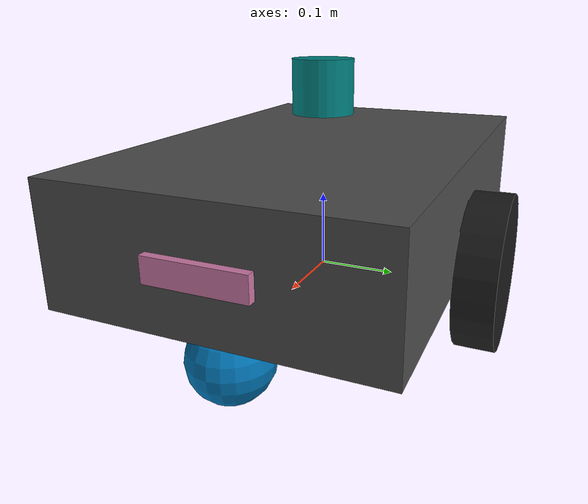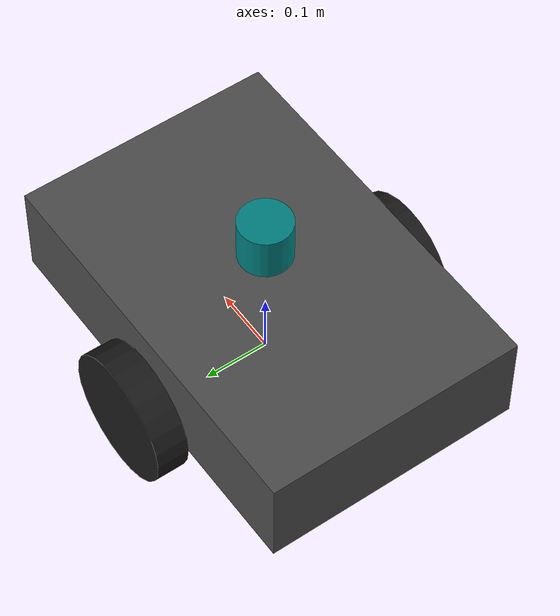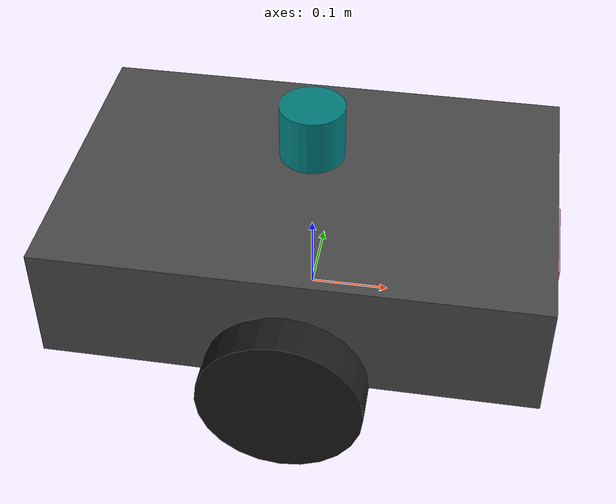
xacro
<?xml version="1.0"?>
<robot xmlns:xacro="http://www.ros.org/wiki/xacro" name="swarm_robot">

  <xacro:arg name="robot_namespace" default="robot_0"/>
  <xacro:property name="ns"  value="$(arg robot_namespace)"/>
  <xacro:property name="pi"  value="3.14159265358979"/>

  <xacro:property name="base_len" value="0.60"/>
  <xacro:property name="base_wid" value="0.40"/>
  <xacro:property name="base_ht"  value="0.15"/>
  <xacro:property name="wheel_r"  value="0.10"/>
  <xacro:property name="wheel_w"  value="0.05"/>
  <xacro:property name="wheel_y"  value="0.225"/>

  <link name="base_footprint"/>
  <joint name="base_joint" type="fixed">
    <parent link="base_footprint"/>
    <child  link="base_link"/>
    <origin xyz="0 0 ${wheel_r}" rpy="0 0 0"/>
  </joint>

  <link name="base_link">
    <visual>
      <geometry><box size="${base_len} ${base_wid} ${base_ht}"/></geometry>
      <material name="grey"><color rgba="0.3 0.3 0.3 1"/></material>
    </visual>
    <collision>
      <geometry><box size="${base_len} ${base_wid} ${base_ht}"/></geometry>
    </collision>
    <inertial>
      <mass value="10.0"/>
      <inertia
        ixx="${10.0/12.0*(base_wid*base_wid+base_ht*base_ht)}"
        iyy="${10.0/12.0*(base_len*base_len+base_ht*base_ht)}"
        izz="${10.0/12.0*(base_len*base_len+base_wid*base_wid)}"
        ixy="0" ixz="0" iyz="0"/>
    </inertial>
  </link>

  <xacro:macro name="drive_wheel" params="name y_pos">
    <link name="${name}">
      <visual>
        <origin rpy="${pi/2} 0 0"/>
        <geometry><cylinder radius="${wheel_r}" length="${wheel_w}"/></geometry>
        <material name="black"><color rgba="0.1 0.1 0.1 1"/></material>
      </visual>
      <collision>
        <origin rpy="${pi/2} 0 0"/>
        <geometry><cylinder radius="${wheel_r}" length="${wheel_w}"/></geometry>
      </collision>
      <inertial>
        <mass value="1.0"/>
        <inertia
          ixx="${1.0/12.0*(3*wheel_r*wheel_r+wheel_w*wheel_w)}"
          iyy="${1.0/12.0*(3*wheel_r*wheel_r+wheel_w*wheel_w)}"
          izz="${1.0/2.0*wheel_r*wheel_r}"
          ixy="0" ixz="0" iyz="0"/>
      </inertial>
    </link>
    <joint name="${name}_joint" type="continuous">
      <parent link="base_link"/>
      <child  link="${name}"/>
      <origin xyz="0 ${y_pos} ${-base_ht/2}" rpy="0 0 0"/>
      <axis xyz="0 1 0"/>
    </joint>
    <gazebo reference="${name}">
      <mu1>1.5</mu1><mu2>1.5</mu2>
      <kp>1000000.0</kp><kd>100.0</kd>
      <minDepth>0.001</minDepth>
    </gazebo>
  </xacro:macro>

  <xacro:drive_wheel name="wheel_left"  y_pos=" ${wheel_y}"/>
  <xacro:drive_wheel name="wheel_right" y_pos="-${wheel_y}"/>

  <link name="caster_link">
    <visual>
      <geometry><sphere radius="${wheel_r*0.5}"/></geometry>
    </visual>
    <collision>
      <geometry><sphere radius="${wheel_r*0.5}"/></geometry>
    </collision>
    <inertial>
      <mass value="0.5"/>
      <inertia ixx="0.001" iyy="0.001" izz="0.001" ixy="0" ixz="0" iyz="0"/>
    </inertial>
  </link>
  <joint name="caster_joint" type="fixed">
    <parent link="base_link"/>
    <child  link="caster_link"/>
    <origin xyz="${base_len/2 - 0.05} 0 ${-base_ht/2 - wheel_r*0.4}" rpy="0 0 0"/>
  </joint>
  <gazebo reference="caster_link">
    <mu1>0.0</mu1><mu2>0.0</mu2>
  </gazebo>

  <link name="lidar_link">
    <visual>
      <geometry><cylinder radius="0.04" length="0.07"/></geometry>
      <material name="teal"><color rgba="0 0.5 0.5 1"/></material>
    </visual>
    <inertial>
      <mass value="0.3"/>
      <inertia ixx="0.001" iyy="0.001" izz="0.001" ixy="0" ixz="0" iyz="0"/>
    </inertial>
  </link>
  <joint name="lidar_joint" type="fixed">
    <parent link="base_link"/>
    <child  link="lidar_link"/>
    <origin xyz="0 0 ${base_ht/2 + 0.07}" rpy="0 0 0"/>
  </joint>

  <link name="camera_link">
    <visual>
      <geometry><box size="0.02 0.12 0.03"/></geometry>
    </visual>
    <inertial>
      <mass value="0.1"/>
      <inertia ixx="0.0001" iyy="0.0001" izz="0.0001" ixy="0" ixz="0" iyz="0"/>
    </inertial>
  </link>
  <joint name="camera_joint" type="fixed">
    <parent link="base_link"/>
    <child  link="camera_link"/>
    <origin xyz="${base_len/2} 0 0" rpy="0 0 0"/>
  </joint>

  <link name="camera_optical_link"/>
  <joint name="camera_optical_joint" type="fixed">
    <parent link="camera_link"/>
    <child  link="camera_optical_link"/>
    <origin xyz="0 0 0" rpy="${-pi/2} 0 ${-pi/2}"/>
  </joint>

  <link name="imu_link">
    <inertial>
      <mass value="0.01"/>
      <inertia ixx="1e-6" iyy="1e-6" izz="1e-6" ixy="0" ixz="0" iyz="0"/>
    </inertial>
  </link>
  <joint name="imu_joint" type="fixed">
    <parent link="base_link"/>
    <child  link="imu_link"/>
    <origin xyz="0 0 0" rpy="0 0 0"/>
  </joint>

  <!-- PLUGINS -->
  <gazebo>
    <plugin name="diff_drive_${ns}" filename="libgazebo_ros_diff_drive.so">
      <ros>
        <namespace>/${ns}</namespace>
        <remapping>cmd_vel:=cmd_vel</remapping>
        <remapping>odom:=odom</remapping>
      </ros>
      <left_joint>wheel_left_joint</left_joint>
      <right_joint>wheel_right_joint</right_joint>
      <wheel_separation>${2.0*wheel_y}</wheel_separation>
      <wheel_diameter>${2.0*wheel_r}</wheel_diameter>
      <max_wheel_torque>20.0</max_wheel_torque>
      <max_wheel_acceleration>1.0</max_wheel_acceleration>
      <publish_odom>true</publish_odom>
      <publish_odom_tf>true</publish_odom_tf>
      <publish_wheel_tf>false</publish_wheel_tf>
      <odometry_frame>${ns}/odom</odometry_frame>
      <robot_base_frame>${ns}/base_footprint</robot_base_frame>
    </plugin>
  </gazebo>

  <gazebo reference="lidar_link">
    <sensor type="ray" name="lidar_${ns}">
      <visualize>false</visualize>
      <update_rate>10</update_rate>
      <ray>
        <scan>
          <horizontal>
            <samples>360</samples>
            <resolution>1</resolution>
            <min_angle>-${pi}</min_angle>
            <max_angle> ${pi}</max_angle>
          </horizontal>
          <vertical>
            <samples>32</samples>
            <resolution>1</resolution>
            <min_angle>-0.2618</min_angle>
            <max_angle> 0.2618</max_angle>
          </vertical>
        </scan>
        <range>
          <min>0.15</min>
          <max>30.0</max>
          <resolution>0.01</resolution>
        </range>
      </ray>
      <plugin name="lidar_plugin_${ns}" filename="libgazebo_ros_ray_sensor.so">
        <ros>
          <namespace>/${ns}</namespace>
          <remapping>~/out:=lidar/points</remapping>
        </ros>
        <output_type>sensor_msgs/PointCloud2</output_type>
        <frame_name>${ns}/lidar_link</frame_name>
      </plugin>
    </sensor>
  </gazebo>

  <gazebo reference="camera_link">
    <sensor type="depth" name="rgbd_${ns}">
      <update_rate>15</update_rate>
      <camera name="${ns}_camera">
        <horizontal_fov>1.5184</horizontal_fov>
        <image>
          <width>424</width>
          <height>240</height>
          <format>R8G8B8</format>
        </image>
        <clip><near>0.05</near><far>6.5</far></clip>
      </camera>
      <plugin name="rgbd_plugin_${ns}" filename="libgazebo_ros_camera.so">
        <ros>
          <namespace>/${ns}</namespace>
        </ros>
        <camera_name>camera</camera_name>
        <frame_name>${ns}/camera_optical_link</frame_name>
        <hack_baseline>0.095</hack_baseline>
        <min_depth>0.40</min_depth>
        <max_depth>6.00</max_depth>
      </plugin>
    </sensor>
  </gazebo>

  <gazebo reference="imu_link">
    <sensor name="imu_${ns}" type="imu">
      <always_on>true</always_on>
      <update_rate>50</update_rate>
      <plugin filename="libgazebo_ros_imu_sensor.so" name="imu_plugin_${ns}">
        <ros>
          <namespace>/${ns}</namespace>
          <remapping>~/out:=imu/data</remapping>
        </ros>
        <frame_name>${ns}/imu_link</frame_name>
        <initial_orientation_as_reference>false</initial_orientation_as_reference>
      </plugin>
    </sensor>
  </gazebo>

</robot>
